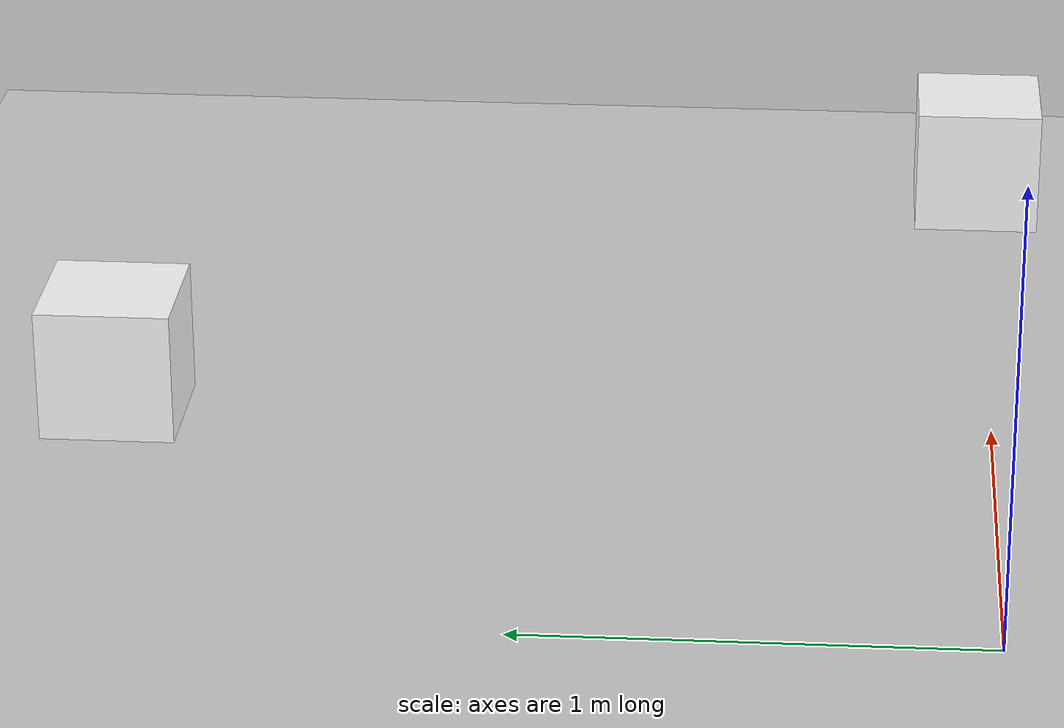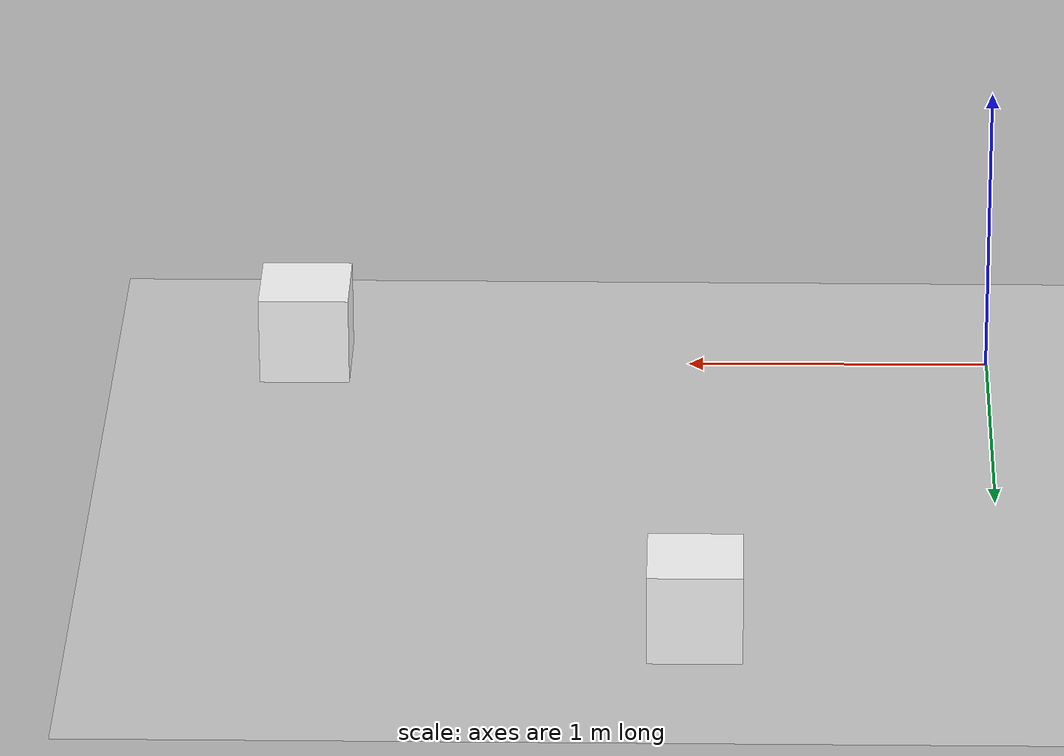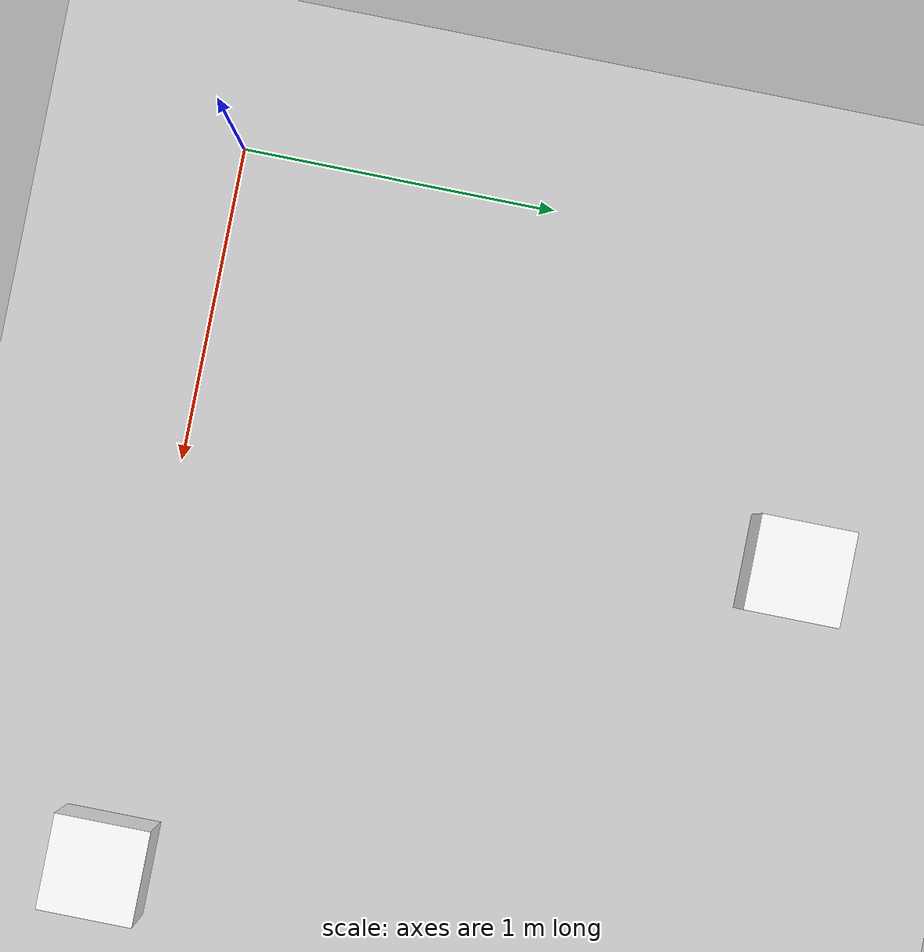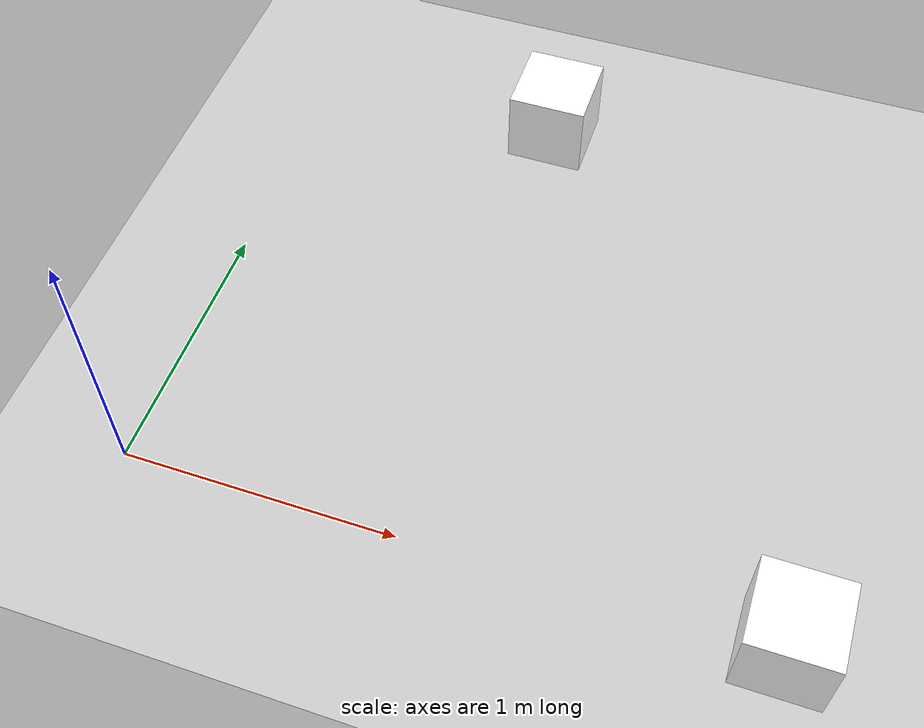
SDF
<sdf version="1.6">
 <world name="default">
  <light name="sun" type="directional">
   <pose>0 0 10 0 -0 0</pose>
   <diffuse>0.8 0.8 0.8 1</diffuse>
   <specular>0.2 0.2 0.2 1</specular>
   <attenuation>
    <range>1000</range>
    <constant>0.9</constant>
    <linear>0.01</linear>
    <quadratic>0.001</quadratic>
   </attenuation>
   <direction>-0.5 0.1 -0.9</direction>
  </light>
  <model name="ground_plane">
   <static>1</static>
   <link name="link">
    <collision name="collision">
     <geometry><plane><normal>0 0 1</normal><size>100 100</size></plane></geometry>
     <surface>
      <contact><collide_bitmask>65535</collide_bitmask></contact>
      <friction><ode><mu>100</mu><mu2>50</mu2></ode></friction>
     </surface>
    </collision>
    <visual name="visual">
     <cast_shadows>0</cast_shadows>
     <geometry><plane><normal>0 0 1</normal><size>100 100</size></plane></geometry>
     <material>
      <script><uri>file://media/materials/scripts/gazebo.material</uri><name>Gazebo/Grey</name></script>
     </material>
    </visual>
   </link>
  </model>
  <gravity>0 0 -9.8</gravity>
  <magnetic_field>6e-06 2.3e-05 -4.2e-05</magnetic_field>
  <atmosphere type="adiabatic"/>
  <physics name="default_physics" default="0" type="ode">
   <ode>
    <solver>
     <type>quick</type>
     <iters>10</iters>
     <sor>1</sor>
     <use_dynamic_moi_rescaling>0</use_dynamic_moi_rescaling>
    </solver>
    <constraints>
     <cfm>0</cfm>
     <erp>0.2</erp>
     <contact_max_correcting_vel>100</contact_max_correcting_vel>
     <contact_surface_layer>0.001</contact_surface_layer>
    </constraints>
   </ode>
   <max_step_size>0.004</max_step_size>
   <real_time_factor>1</real_time_factor>
   <real_time_update_rate>250</real_time_update_rate>
  </physics>
  <scene><ambient>0.4 0.4 0.4 1</ambient><background>0.7 0.7 0.7 1</background><shadows>1</shadows></scene>
  <audio><device>default</device></audio>
  <spherical_coordinates>
   <surface_model>EARTH_WGS84</surface_model>
   <latitude_deg>0</latitude_deg>
   <longitude_deg>0</longitude_deg>
   <elevation>0</elevation>
   <heading_deg>0</heading_deg>
  </spherical_coordinates>
  <model name="QR_2_cube">
   <link name="link">
    <inertial>
     <mass>1</mass>
     <inertia><ixx>0</ixx><ixy>0</ixy><ixz>0</ixz><iyy>0</iyy><iyz>0</iyz><izz>0</izz></inertia>
    </inertial>
    <visual name="visual">
     <geometry><box><size>0.3 0.3 0.3</size></box></geometry>
     <material>
      <script>
       <uri>model://QR_2_cube/materials/scripts/QR_2_cube.material</uri>
       <uri>model://QR_2_cube/materials/textures</uri>
       <name>QR_2_cube</name>
      </script>
      <ambient>1 1 1 1</ambient>
     </material>
    </visual>
    <collision name="collision">
     <geometry><box><size>0.3 0.3 0.3</size></box></geometry>
     <surface>
      <friction>
       <ode><mu>0</mu><mu2>0</mu2><fdir1>0 0 0</fdir1><slip1>0</slip1><slip2>0</slip2></ode>
       <torsional>
        <coefficient>1</coefficient>
        <patch_radius>0</patch_radius>
        <surface_radius>0</surface_radius>
        <use_patch_radius>1</use_patch_radius>
        <ode><slip>0</slip></ode>
       </torsional>
      </friction>
      <bounce><restitution_coefficient>0</restitution_coefficient><threshold>1e+06</threshold></bounce>
      <contact>
       <collide_without_contact>0</collide_without_contact>
       <collide_without_contact_bitmask>1</collide_without_contact_bitmask>
       <collide_bitmask>1</collide_bitmask>
       <ode>
        <soft_cfm>0</soft_cfm>
        <soft_erp>0.2</soft_erp>
        <kp>1e+13</kp>
        <kd>1</kd>
        <max_vel>0.01</max_vel>
        <min_depth>0</min_depth>
       </ode>
      </contact>
     </surface>
    </collision>
   </link>
   <static>0</static>
   <pose>0.967536 1.94903 0.15 0 -0 0</pose>
  </model>
  <model name="QR_1_cube">
   <link name="link">
    <inertial>
     <mass>1</mass>
     <inertia><ixx>0</ixx><ixy>0</ixy><ixz>0</ixz><iyy>0</iyy><iyz>0</iyz><izz>0</izz></inertia>
    </inertial>
    <visual name="visual">
     <geometry><box><size>0.3 0.3 0.3</size></box></geometry>
     <material>
      <script>
       <uri>model://QR_1_cube/materials/scripts/QR_1_cube.material</uri>
       <uri>model://QR_1_cube/materials/textures</uri>
       <name>QR_1_cube</name>
      </script>
      <ambient>1 1 1 1</ambient>
     </material>
    </visual>
    <collision name="collision">
     <geometry><box><size>0.3 0.3 0.3</size></box></geometry>
     <surface>
      <friction>
       <ode><mu>0</mu><mu2>0</mu2><fdir1>0 0 0</fdir1><slip1>0</slip1><slip2>0</slip2></ode>
       <torsional>
        <coefficient>1</coefficient>
        <patch_radius>0</patch_radius>
        <surface_radius>0</surface_radius>
        <use_patch_radius>1</use_patch_radius>
        <ode><slip>0</slip></ode>
       </torsional>
      </friction>
      <bounce><restitution_coefficient>0</restitution_coefficient><threshold>1e+06</threshold></bounce>
      <contact>
       <collide_without_contact>0</collide_without_contact>
       <collide_without_contact_bitmask>1</collide_without_contact_bitmask>
       <collide_bitmask>1</collide_bitmask>
       <ode>
        <soft_cfm>0</soft_cfm>
        <soft_erp>0.2</soft_erp>
        <kp>1e+13</kp>
        <kd>1</kd>
        <max_vel>0.01</max_vel>
        <min_depth>0</min_depth>
       </ode>
      </contact>
     </surface>
    </collision>
   </link>
   <static>0</static>
   <pose>2.28657 0.009555 0.150001 5e-06 -1e-06 0</pose>
   <plugin name="libfastsense_gazebo_move_obj" filename="libfastsense_gazebo_move_obj.so"/>
  </model>
 </world>
</sdf>
